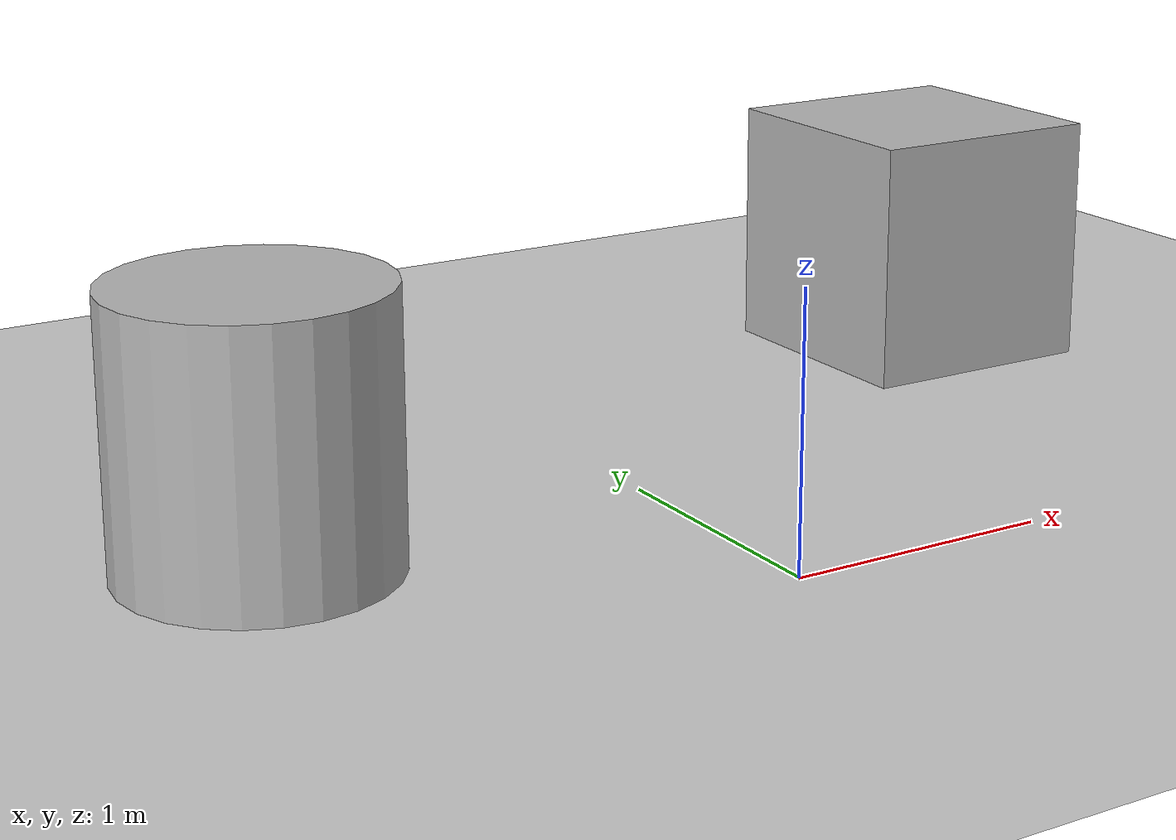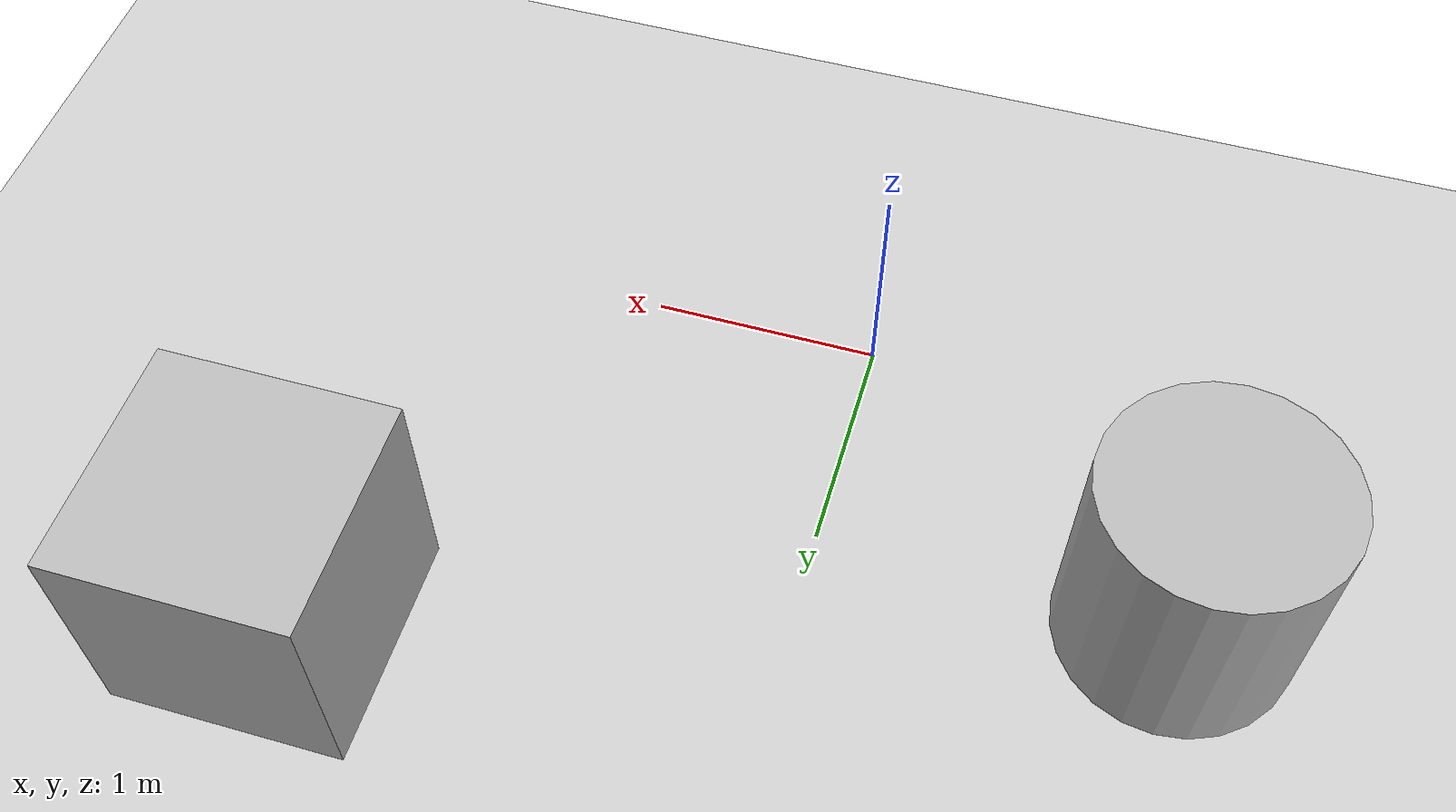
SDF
<?xml version="1.0" ?>
<sdf version="1.6">
  <world name="default">
    <include>
      <uri>model://sun</uri>
    </include>

    <include>
      <uri>model://ground_plane</uri>
    </include>

    <model name="box_obstacle">
      <pose>2.0 2.0 0.5 0 0 0</pose>
      <link name="link">
        <collision name="collision">
          <geometry>
            <box><size>1 1 1</size></box>
          </geometry>
        </collision>
        <visual name="visual">
          <geometry>
            <box><size>1 1 1</size></box>
          </geometry>
        </visual>
      </link>
    </model>

    <model name="cylinder_obstacle">
      <pose>-1.5 1.0 0.5 0 0 0</pose>
      <link name="link">
        <collision name="collision">
          <geometry>
            <cylinder>
              <radius>0.5</radius>
              <length>1.0</length>
            </cylinder>
          </geometry>
        </collision>
        <visual name="visual">
          <geometry>
            <cylinder>
              <radius>0.5</radius>
              <length>1.0</length>
            </cylinder>
          </geometry>
        </visual>
      </link>
    </model>
  </world>
</sdf>
